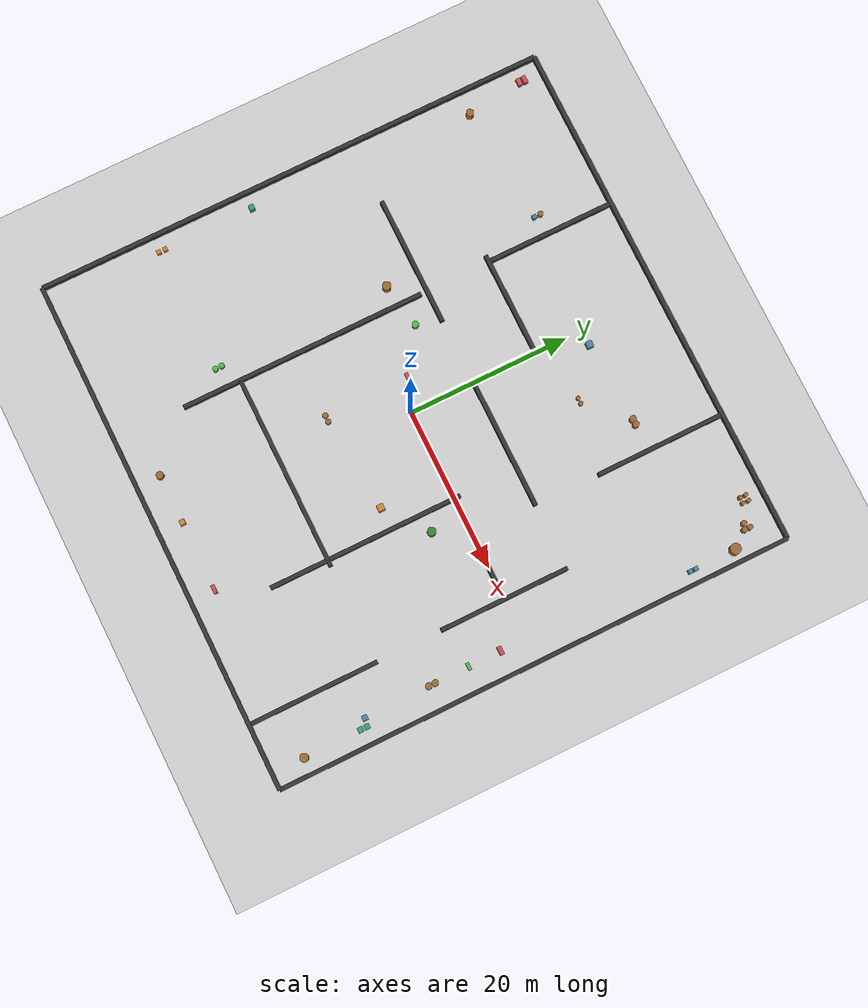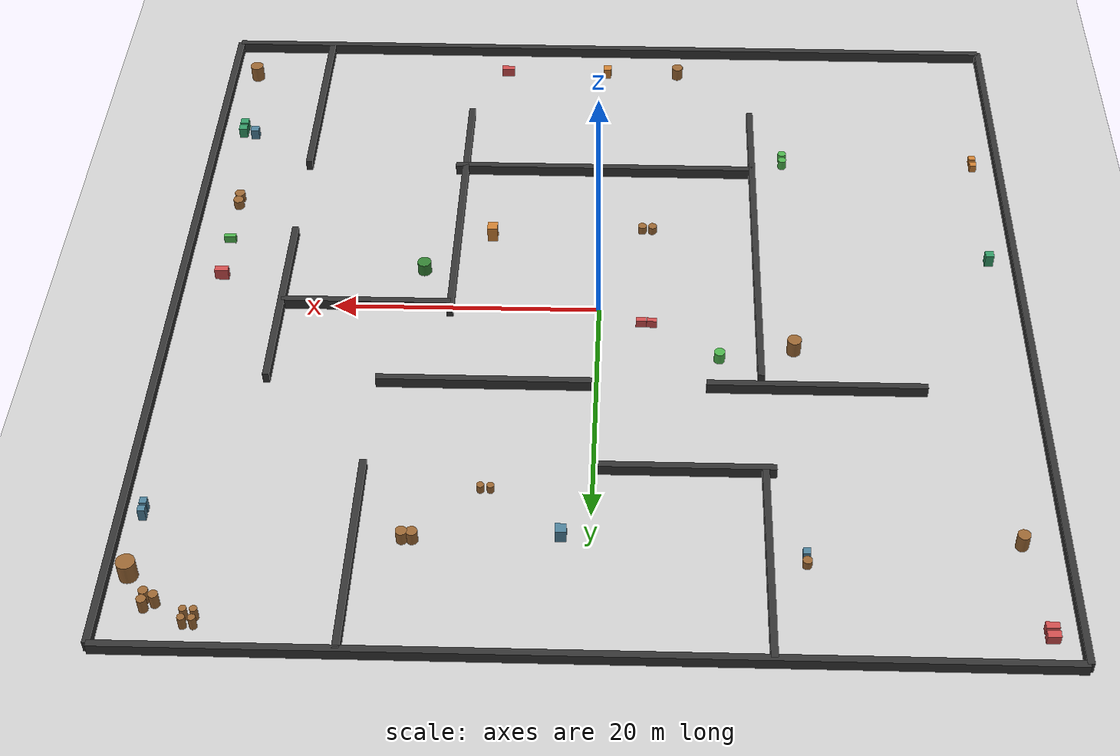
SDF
<sdf version="1.9">
 <world name="test_world">
  <model name="ground_plane">
   <static>true</static>
   <link name="link">
    <collision name="collision">
     <geometry><plane><normal>0 0 1</normal><size>64 64</size></plane></geometry>
    </collision>
    <visual name="visual">
     <geometry><plane><normal>0 0 1</normal><size>64 64</size></plane></geometry>
     <material>
      <ambient>0.8 0.8 0.8 1</ambient>
      <diffuse>0.8 0.8 0.8 1</diffuse>
      <specular>0.8 0.8 0.8 1</specular>
     </material>
    </visual>
    <inertial>
     <mass>1</mass>
     <inertia><ixx>1</ixx><ixy>0</ixy><ixz>0</ixz><iyy>1</iyy><iyz>0</iyz><izz>1</izz></inertia>
    </inertial>
   </link>
  </model>
  <model name="wall">
   <link name="length_right">
    <pose>0 -32 0 0 -0 0</pose>
    <inertial>
     <mass>1.14395</mass>
     <inertia><ixx>9.5329</ixx><ixy>0</ixy><ixz>0</ixz><iyy>0.0238</iyy><iyz>0</iyz><izz>9.5567</izz></inertia>
    </inertial>
    <collision name="box_collision"><geometry><box><size>64 0.5 1.6</size></box></geometry></collision>
    <visual name="box_visual">
     <geometry><box><size>64 0.5 1.6</size></box></geometry>
     <material>
      <ambient>0.2 0.2 0.2 1</ambient>
      <diffuse>0.2 0.2 0.2 1</diffuse>
      <specular>0.2 0.2 0.2 1</specular>
     </material>
    </visual>
   </link>
   <link name="length_left">
    <pose>0 32 0 0 -0 0</pose>
    <inertial>
     <mass>1.14395</mass>
     <inertia><ixx>9.5329</ixx><ixy>0</ixy><ixz>0</ixz><iyy>0.0238</iyy><iyz>0</iyz><izz>9.5567</izz></inertia>
    </inertial>
    <collision name="box_collision"><geometry><box><size>64 0.5 1.6</size></box></geometry></collision>
    <visual name="box_visual">
     <geometry><box><size>64 0.5 1.6</size></box></geometry>
     <material>
      <ambient>0.2 0.2 0.2 1</ambient>
      <diffuse>0.2 0.2 0.2 1</diffuse>
      <specular>0.2 0.2 0.2 1</specular>
     </material>
    </visual>
   </link>
   <link name="width_right">
    <pose>-32 0 0 0 -0 0</pose>
    <inertial>
     <inertia><ixx>0.16666</ixx><ixy>0</ixy><ixz>0</ixz><iyy>0.16666</iyy><iyz>0</iyz><izz>0.16666</izz></inertia>
     <mass>1000</mass>
    </inertial>
    <collision name="box_collision"><geometry><box><size>0.5 64 1.6</size></box></geometry></collision>
    <visual name="box_visual">
     <geometry><box><size>0.5 64 1.6</size></box></geometry>
     <material>
      <ambient>0.2 0.2 0.2 1</ambient>
      <diffuse>0.2 0.2 0.2 1</diffuse>
      <specular>0.2 0.2 0.2 1</specular>
     </material>
    </visual>
   </link>
   <link name="width_left">
    <pose>32 0 0 0 -0 0</pose>
    <inertial>
     <inertia><ixx>0.16666</ixx><ixy>0</ixy><ixz>0</ixz><iyy>0.16666</iyy><iyz>0</iyz><izz>0.16666</izz></inertia>
     <mass>1000</mass>
    </inertial>
    <collision name="box_collision"><geometry><box><size>0.5 64 1.6</size></box></geometry></collision>
    <visual name="box_visual">
     <geometry><box><size>0.5 64 1.6</size></box></geometry>
     <material>
      <ambient>0.2 0.2 0.2 1</ambient>
      <diffuse>0.2 0.2 0.2 1</diffuse>
      <specular>0.2 0.2 0.2 1</specular>
     </material>
    </visual>
   </link>
   <link name="top_from_right_to_middle_width">
    <pose>24 -24 0 0 0 0</pose>
    <inertial>
     <mass>1000</mass>
     <inertia><ixx>9.5329</ixx><ixy>0</ixy><ixz>0</ixz><iyy>0.0238</iyy><iyz>0</iyz><izz>9.5567</izz></inertia>
    </inertial>
    <collision name="box_collision"><geometry><box><size>0.5 16 1.6</size></box></geometry></collision>
    <visual name="box_visual">
     <geometry><box><size>0.5 16 1.6</size></box></geometry>
     <material>
      <ambient>0.2 0.2 0.2 1</ambient>
      <diffuse>0.2 0.2 0.2 1</diffuse>
      <specular>0.2 0.2 0.2 1</specular>
     </material>
    </visual>
   </link>
   <link name="top_middle_width">
    <pose>24 0 0 0 0 0</pose>
    <inertial>
     <mass>1000</mass>
     <inertia><ixx>9.5329</ixx><ixy>0</ixy><ixz>0</ixz><iyy>0.0238</iyy><iyz>0</iyz><izz>9.5567</izz></inertia>
    </inertial>
    <collision name="box_collision"><geometry><box><size>0.5 16 1.6</size></box></geometry></collision>
    <visual name="box_visual">
     <geometry><box><size>0.5 16 1.6</size></box></geometry>
     <material>
      <ambient>0.2 0.2 0.2 1</ambient>
      <diffuse>0.2 0.2 0.2 1</diffuse>
      <specular>0.2 0.2 0.2 1</specular>
     </material>
    </visual>
   </link>
   <link name="top_left_length">
    <pose>16 24 0 0 0 0</pose>
    <inertial>
     <mass>1000</mass>
     <inertia><ixx>9.5329</ixx><ixy>0</ixy><ixz>0</ixz><iyy>0.0238</iyy><iyz>0</iyz><izz>9.5567</izz></inertia>
    </inertial>
    <collision name="box_collision"><geometry><box><size>0.5 16 1.6</size></box></geometry></collision>
    <visual name="box_visual">
     <geometry><box><size>0.5 16 1.6</size></box></geometry>
     <material>
      <ambient>0.2 0.2 0.2 1</ambient>
      <diffuse>0.2 0.2 0.2 1</diffuse>
      <specular>0.2 0.2 0.2 1</specular>
     </material>
    </visual>
   </link>
   <link name="middle_length">
    <pose>17.6 0 0 0 0 0</pose>
    <inertial>
     <mass>1000</mass>
     <inertia><ixx>9.5329</ixx><ixy>0</ixy><ixz>0</ixz><iyy>0.0238</iyy><iyz>0</iyz><izz>9.5567</izz></inertia>
    </inertial>
    <collision name="box_collision"><geometry><box><size>12.8 0.5 1.6</size></box></geometry></collision>
    <visual name="box_visual">
     <geometry><box><size>12.8 0.5 1.6</size></box></geometry>
     <material>
      <ambient>0.2 0.2 0.2 1</ambient>
      <diffuse>0.2 0.2 0.2 1</diffuse>
      <specular>0.2 0.2 0.2 1</specular>
     </material>
    </visual>
   </link>
   <link name="middle_width">
    <pose>11.2 -11.2 0 0 0 0</pose>
    <inertial>
     <mass>1000</mass>
     <inertia><ixx>9.5329</ixx><ixy>0</ixy><ixz>0</ixz><iyy>0.0238</iyy><iyz>0</iyz><izz>9.5567</izz></inertia>
    </inertial>
    <collision name="box_collision"><geometry><box><size>0.5 24 1.6</size></box></geometry></collision>
    <visual name="box_visual">
     <geometry><box><size>0.5 24 1.6</size></box></geometry>
     <material>
      <ambient>0.2 0.2 0.2 1</ambient>
      <diffuse>0.2 0.2 0.2 1</diffuse>
      <specular>0.2 0.2 0.2 1</specular>
     </material>
    </visual>
   </link>
   <link name="middle_left_length">
    <pose>8 8 0 0 0 0</pose>
    <inertial>
     <mass>1000</mass>
     <inertia><ixx>9.5329</ixx><ixy>0</ixy><ixz>0</ixz><iyy>0.0238</iyy><iyz>0</iyz><izz>9.5567</izz></inertia>
    </inertial>
    <collision name="box_collision"><geometry><box><size>16 0.5 1.6</size></box></geometry></collision>
    <visual name="box_visual">
     <geometry><box><size>16 0.5 1.6</size></box></geometry>
     <material>
      <ambient>0.2 0.2 0.2 1</ambient>
      <diffuse>0.2 0.2 0.2 1</diffuse>
      <specular>0.2 0.2 0.2 1</specular>
     </material>
    </visual>
   </link>
   <link name="low_left_length">
    <pose>-16 8 0 0 0 0</pose>
    <inertial>
     <mass>1000</mass>
     <inertia><ixx>9.5329</ixx><ixy>0</ixy><ixz>0</ixz><iyy>0.0238</iyy><iyz>0</iyz><izz>9.5567</izz></inertia>
    </inertial>
    <collision name="box_collision"><geometry><box><size>16 0.5 1.6</size></box></geometry></collision>
    <visual name="box_visual">
     <geometry><box><size>16 0.5 1.6</size></box></geometry>
     <material>
      <ambient>0.2 0.2 0.2 1</ambient>
      <diffuse>0.2 0.2 0.2 1</diffuse>
      <specular>0.2 0.2 0.2 1</specular>
     </material>
    </visual>
   </link>
   <link name="left_blind_alley_left_wall">
    <pose>-6.4 16 0 0 0 0</pose>
    <inertial>
     <mass>1000</mass>
     <inertia><ixx>9.5329</ixx><ixy>0</ixy><ixz>0</ixz><iyy>0.0238</iyy><iyz>0</iyz><izz>9.5567</izz></inertia>
    </inertial>
    <collision name="box_collision"><geometry><box><size>12.8 0.5 1.6</size></box></geometry></collision>
    <visual name="box_visual">
     <geometry><box><size>12.8 0.5 1.6</size></box></geometry>
     <material>
      <ambient>0.2 0.2 0.2 1</ambient>
      <diffuse>0.2 0.2 0.2 1</diffuse>
      <specular>0.2 0.2 0.2 1</specular>
     </material>
    </visual>
   </link>
   <link name="left_blind_alley_bottom_wall">
    <pose>-12 24 0 0 0 0</pose>
    <inertial>
     <mass>1000</mass>
     <inertia><ixx>9.5329</ixx><ixy>0</ixy><ixz>0</ixz><iyy>0.0238</iyy><iyz>0</iyz><izz>9.5567</izz></inertia>
    </inertial>
    <collision name="box_collision"><geometry><box><size>0.5 16 1.6</size></box></geometry></collision>
    <visual name="box_visual">
     <geometry><box><size>0.5 16 1.6</size></box></geometry>
     <material>
      <ambient>0.2 0.2 0.2 1</ambient>
      <diffuse>0.2 0.2 0.2 1</diffuse>
      <specular>0.2 0.2 0.2 1</specular>
     </material>
    </visual>
   </link>
   <link name="left_bottom_width">
    <pose>-12 -8 0 0 0 0</pose>
    <inertial>
     <mass>1000</mass>
     <inertia><ixx>9.5329</ixx><ixy>0</ixy><ixz>0</ixz><iyy>0.0238</iyy><iyz>0</iyz><izz>9.5567</izz></inertia>
    </inertial>
    <collision name="box_collision"><geometry><box><size>0.5 30.4 1.6</size></box></geometry></collision>
    <visual name="box_visual">
     <geometry><box><size>0.5 30.4 1.6</size></box></geometry>
     <material>
      <ambient>0.2 0.2 0.2 1</ambient>
      <diffuse>0.2 0.2 0.2 1</diffuse>
      <specular>0.2 0.2 0.2 1</specular>
     </material>
    </visual>
   </link>
   <link name="right_middle_length">
    <pose>0 -16 0 0 0 0</pose>
    <inertial>
     <mass>1000</mass>
     <inertia><ixx>9.5329</ixx><ixy>0</ixy><ixz>0</ixz><iyy>0.0238</iyy><iyz>0</iyz><izz>9.5567</izz></inertia>
    </inertial>
    <collision name="box_collision"><geometry><box><size>24 0.5 1.6</size></box></geometry></collision>
    <visual name="box_visual">
     <geometry><box><size>24 0.5 1.6</size></box></geometry>
     <material>
      <ambient>0.2 0.2 0.2 1</ambient>
      <diffuse>0.2 0.2 0.2 1</diffuse>
      <specular>0.2 0.2 0.2 1</specular>
     </material>
    </visual>
   </link>
   <static>true</static>
  </model>
  <model name="feat_cylinder_g1_1">
   <static>true</static>
   <pose>30.5 26.0 0.78 0 0 0</pose>
   <link name="link">
    <collision name="c">
     <geometry><cylinder><radius>0.65</radius><length>1.56</length></cylinder></geometry>
    </collision>
    <visual name="v">
     <geometry><cylinder><radius>0.65</radius><length>1.56</length></cylinder></geometry>
     <material><ambient>0.6 0.4 0.2 1</ambient><diffuse>0.6 0.4 0.2 1</diffuse></material>
    </visual>
   </link>
  </model>
  <model name="feat_box_g2_1">
   <static>true</static>
   <pose>30.5 21.0 0.52 0 0 0</pose>
   <link name="link">
    <collision name="c"><geometry><box><size>0.52 0.52 1.04</size></box></geometry></collision>
    <visual name="v">
     <geometry><box><size>0.52 0.52 1.04</size></box></geometry>
     <material><ambient>0.3 0.5 0.6 1</ambient><diffuse>0.3 0.5 0.6 1</diffuse></material>
    </visual>
   </link>
  </model>
  <model name="feat_box_g2_2">
   <static>true</static>
   <pose>30.5 20.3 0.52 0 0 0</pose>
   <link name="link">
    <collision name="c"><geometry><box><size>0.52 0.52 1.04</size></box></geometry></collision>
    <visual name="v">
     <geometry><box><size>0.52 0.52 1.04</size></box></geometry>
     <material><ambient>0.3 0.5 0.6 1</ambient><diffuse>0.3 0.5 0.6 1</diffuse></material>
    </visual>
   </link>
  </model>
  <model name="feat_cylinder_g3_1">
   <static>true</static>
   <pose>29.0 28.0 0.58 0 0 0</pose>
   <link name="link">
    <collision name="c">
     <geometry><cylinder><radius>0.33</radius><length>1.17</length></cylinder></geometry>
    </collision>
    <visual name="v">
     <geometry><cylinder><radius>0.33</radius><length>1.17</length></cylinder></geometry>
     <material><ambient>0.6 0.4 0.2 1</ambient><diffuse>0.6 0.4 0.2 1</diffuse></material>
    </visual>
   </link>
  </model>
  <model name="feat_cylinder_g3_2">
   <static>true</static>
   <pose>29.0 28.7 0.58 0 0 0</pose>
   <link name="link">
    <collision name="c">
     <geometry><cylinder><radius>0.33</radius><length>1.17</length></cylinder></geometry>
    </collision>
    <visual name="v">
     <geometry><cylinder><radius>0.33</radius><length>1.17</length></cylinder></geometry>
     <material><ambient>0.6 0.4 0.2 1</ambient><diffuse>0.6 0.4 0.2 1</diffuse></material>
    </visual>
   </link>
  </model>
  <model name="feat_cylinder_g3_3">
   <static>true</static>
   <pose>28.3 28.3 0.58 0 0 0</pose>
   <link name="link">
    <collision name="c">
     <geometry><cylinder><radius>0.33</radius><length>1.17</length></cylinder></geometry>
    </collision>
    <visual name="v">
     <geometry><cylinder><radius>0.33</radius><length>1.17</length></cylinder></geometry>
     <material><ambient>0.6 0.4 0.2 1</ambient><diffuse>0.6 0.4 0.2 1</diffuse></material>
    </visual>
   </link>
  </model>
  <model name="feat_cylinder_g4_1">
   <static>true</static>
   <pose>25.5 30.0 0.52 0 0 0</pose>
   <link name="link">
    <collision name="c">
     <geometry><cylinder><radius>0.26</radius><length>1.04</length></cylinder></geometry>
    </collision>
    <visual name="v">
     <geometry><cylinder><radius>0.26</radius><length>1.04</length></cylinder></geometry>
     <material><ambient>0.6 0.4 0.2 1</ambient><diffuse>0.6 0.4 0.2 1</diffuse></material>
    </visual>
   </link>
  </model>
  <model name="feat_cylinder_g4_2">
   <static>true</static>
   <pose>26.2 30.0 0.52 0 0 0</pose>
   <link name="link">
    <collision name="c">
     <geometry><cylinder><radius>0.26</radius><length>1.04</length></cylinder></geometry>
    </collision>
    <visual name="v">
     <geometry><cylinder><radius>0.26</radius><length>1.04</length></cylinder></geometry>
     <material><ambient>0.6 0.4 0.2 1</ambient><diffuse>0.6 0.4 0.2 1</diffuse></material>
    </visual>
   </link>
  </model>
  <model name="feat_cylinder_g4_3">
   <static>true</static>
   <pose>26.2 29.3 0.52 0 0 0</pose>
   <link name="link">
    <collision name="c">
     <geometry><cylinder><radius>0.26</radius><length>1.04</length></cylinder></geometry>
    </collision>
    <visual name="v">
     <geometry><cylinder><radius>0.26</radius><length>1.04</length></cylinder></geometry>
     <material><ambient>0.6 0.4 0.2 1</ambient><diffuse>0.6 0.4 0.2 1</diffuse></material>
    </visual>
   </link>
  </model>
  <model name="feat_cylinder_g4_4">
   <static>true</static>
   <pose>25.5 29.3 0.52 0 0 0</pose>
   <link name="link">
    <collision name="c">
     <geometry><cylinder><radius>0.26</radius><length>1.04</length></cylinder></geometry>
    </collision>
    <visual name="v">
     <geometry><cylinder><radius>0.26</radius><length>1.04</length></cylinder></geometry>
     <material><ambient>0.6 0.4 0.2 1</ambient><diffuse>0.6 0.4 0.2 1</diffuse></material>
    </visual>
   </link>
  </model>
  <model name="feat_cylinder_g5_1">
   <static>true</static>
   <pose>-29.0 22.0 0.65 0 0 0</pose>
   <link name="link">
    <collision name="c">
     <geometry><cylinder><radius>0.45</radius><length>1.3</length></cylinder></geometry>
    </collision>
    <visual name="v">
     <geometry><cylinder><radius>0.45</radius><length>1.3</length></cylinder></geometry>
     <material><ambient>0.6 0.4 0.2 1</ambient><diffuse>0.6 0.4 0.2 1</diffuse></material>
    </visual>
   </link>
  </model>
  <model name="feat_cylinder_g6_1">
   <static>true</static>
   <pose>-14.5 24.0 0.33 0 0 0</pose>
   <link name="link">
    <collision name="c">
     <geometry><cylinder><radius>0.33</radius><length>0.65</length></cylinder></geometry>
    </collision>
    <visual name="v">
     <geometry><cylinder><radius>0.33</radius><length>0.65</length></cylinder></geometry>
     <material><ambient>0.6 0.4 0.2 1</ambient><diffuse>0.6 0.4 0.2 1</diffuse></material>
    </visual>
   </link>
  </model>
  <model name="feat_box_g6_2">
   <static>true</static>
   <pose>-14.5 23.2 0.33 0 0 0</pose>
   <link name="link">
    <collision name="c"><geometry><box><size>0.52 0.52 0.65</size></box></geometry></collision>
    <visual name="v">
     <geometry><box><size>0.52 0.52 0.65</size></box></geometry>
     <material><ambient>0.3 0.5 0.6 1</ambient><diffuse>0.3 0.5 0.6 1</diffuse></material>
    </visual>
   </link>
  </model>
  <model name="feat_cuboid_g7_1">
   <static>true</static>
   <pose>-30.0 29.0 0.39 0 0 0</pose>
   <link name="link">
    <collision name="c"><geometry><box><size>0.91 0.52 0.78</size></box></geometry></collision>
    <visual name="v">
     <geometry><box><size>0.91 0.52 0.78</size></box></geometry>
     <material><ambient>0.8 0.3 0.3 1</ambient><diffuse>0.8 0.3 0.3 1</diffuse></material>
    </visual>
   </link>
  </model>
  <model name="feat_cuboid_g7_2">
   <static>true</static>
   <pose>-30.0 29.7 0.39 0 0 0</pose>
   <link name="link">
    <collision name="c"><geometry><box><size>0.91 0.52 0.78</size></box></geometry></collision>
    <visual name="v">
     <geometry><box><size>0.91 0.52 0.78</size></box></geometry>
     <material><ambient>0.8 0.3 0.3 1</ambient><diffuse>0.8 0.3 0.3 1</diffuse></material>
    </visual>
   </link>
  </model>
  <model name="feat_box_g8_1">
   <static>true</static>
   <pose>2.0 22.0 0.52 0 0 0</pose>
   <link name="link">
    <collision name="c"><geometry><box><size>0.78 0.78 1.04</size></box></geometry></collision>
    <visual name="v">
     <geometry><box><size>0.78 0.78 1.04</size></box></geometry>
     <material><ambient>0.3 0.5 0.6 1</ambient><diffuse>0.3 0.5 0.6 1</diffuse></material>
    </visual>
   </link>
  </model>
  <model name="feat_cylinder_g9_1">
   <static>true</static>
   <pose>12.0 22.5 0.52 0 0 0</pose>
   <link name="link">
    <collision name="c">
     <geometry><cylinder><radius>0.4</radius><length>1.04</length></cylinder></geometry>
    </collision>
    <visual name="v">
     <geometry><cylinder><radius>0.4</radius><length>1.04</length></cylinder></geometry>
     <material><ambient>0.6 0.4 0.2 1</ambient><diffuse>0.6 0.4 0.2 1</diffuse></material>
    </visual>
   </link>
  </model>
  <model name="feat_cylinder_g9_2">
   <static>true</static>
   <pose>12.7 22.5 0.52 0 0 0</pose>
   <link name="link">
    <collision name="c">
     <geometry><cylinder><radius>0.4</radius><length>1.04</length></cylinder></geometry>
    </collision>
    <visual name="v">
     <geometry><cylinder><radius>0.4</radius><length>1.04</length></cylinder></geometry>
     <material><ambient>0.6 0.4 0.2 1</ambient><diffuse>0.6 0.4 0.2 1</diffuse></material>
    </visual>
   </link>
  </model>
  <model name="feat_cylinder_g10_1">
   <static>true</static>
   <pose>7.0 18.0 0.33 0 0 0</pose>
   <link name="link">
    <collision name="c">
     <geometry><cylinder><radius>0.26</radius><length>0.65</length></cylinder></geometry>
    </collision>
    <visual name="v">
     <geometry><cylinder><radius>0.26</radius><length>0.65</length></cylinder></geometry>
     <material><ambient>0.6 0.4 0.2 1</ambient><diffuse>0.6 0.4 0.2 1</diffuse></material>
    </visual>
   </link>
  </model>
  <model name="feat_cylinder_g10_2">
   <static>true</static>
   <pose>7.7 18.0 0.33 0 0 0</pose>
   <link name="link">
    <collision name="c">
     <geometry><cylinder><radius>0.26</radius><length>0.65</length></cylinder></geometry>
    </collision>
    <visual name="v">
     <geometry><cylinder><radius>0.26</radius><length>0.65</length></cylinder></geometry>
     <material><ambient>0.6 0.4 0.2 1</ambient><diffuse>0.6 0.4 0.2 1</diffuse></material>
    </visual>
   </link>
  </model>
  <model name="feat_cuboid_g11_1">
   <static>true</static>
   <pose>29.0 -3.0 0.45 0 0 0</pose>
   <link name="link">
    <collision name="c"><geometry><box><size>1.04 0.52 0.91</size></box></geometry></collision>
    <visual name="v">
     <geometry><box><size>1.04 0.52 0.91</size></box></geometry>
     <material><ambient>0.8 0.3 0.3 1</ambient><diffuse>0.8 0.3 0.3 1</diffuse></material>
    </visual>
   </link>
  </model>
  <model name="feat_cylinder_g12_1">
   <static>true</static>
   <pose>29.0 -12.0 0.39 0 0 0</pose>
   <link name="link">
    <collision name="c">
     <geometry><cylinder><radius>0.4</radius><length>0.78</length></cylinder></geometry>
    </collision>
    <visual name="v">
     <geometry><cylinder><radius>0.4</radius><length>0.78</length></cylinder></geometry>
     <material><ambient>0.6 0.4 0.2 1</ambient><diffuse>0.6 0.4 0.2 1</diffuse></material>
    </visual>
   </link>
  </model>
  <model name="feat_cylinder_g12_2">
   <static>true</static>
   <pose>29.0 -11.2 0.39 0 0 0</pose>
   <link name="link">
    <collision name="c">
     <geometry><cylinder><radius>0.4</radius><length>0.78</length></cylinder></geometry>
    </collision>
    <visual name="v">
     <geometry><cylinder><radius>0.4</radius><length>0.78</length></cylinder></geometry>
     <material><ambient>0.6 0.4 0.2 1</ambient><diffuse>0.6 0.4 0.2 1</diffuse></material>
    </visual>
   </link>
  </model>
  <model name="feat_box_g13_1">
   <static>true</static>
   <pose>29.0 -20.0 0.45 0 0 0</pose>
   <link name="link">
    <collision name="c"><geometry><box><size>0.65 0.65 0.91</size></box></geometry></collision>
    <visual name="v">
     <geometry><box><size>0.65 0.65 0.91</size></box></geometry>
     <material><ambient>0.3 0.5 0.6 1</ambient><diffuse>0.3 0.5 0.6 1</diffuse></material>
    </visual>
   </link>
  </model>
  <model name="feat_cuboid_g14_1">
   <static>true</static>
   <pose>29.0 -7.0 0.39 0 0 0</pose>
   <link name="link">
    <collision name="c"><geometry><box><size>0.91 0.4 0.65</size></box></geometry></collision>
    <visual name="v">
     <geometry><box><size>0.91 0.4 0.65</size></box></geometry>
     <material><ambient>0.3 0.7 0.3 1</ambient><diffuse>0.3 0.7 0.3 1</diffuse></material>
    </visual>
   </link>
  </model>
  <model name="feat_cylinder_g15_1">
   <static>true</static>
   <pose>13.5 -4.0 0.52 0 0 0</pose>
   <link name="link">
    <collision name="c">
     <geometry><cylinder><radius>0.52</radius><length>1.04</length></cylinder></geometry>
    </collision>
    <visual name="v">
     <geometry><cylinder><radius>0.52</radius><length>1.04</length></cylinder></geometry>
     <material><ambient>0.2 0.5 0.2 1</ambient><diffuse>0.2 0.5 0.2 1</diffuse></material>
    </visual>
   </link>
  </model>
  <model name="feat_box_g16_1">
   <static>true</static>
   <pose>8.5 -8.0 0.65 0 0 0</pose>
   <link name="link">
    <collision name="c"><geometry><box><size>0.78 0.78 1.3</size></box></geometry></collision>
    <visual name="v">
     <geometry><box><size>0.78 0.78 1.3</size></box></geometry>
     <material><ambient>0.8 0.5 0.2 1</ambient><diffuse>0.8 0.5 0.2 1</diffuse></material>
    </visual>
   </link>
  </model>
  <model name="feat_cylinder_g17_1">
   <static>true</static>
   <pose>-4.0 -9.0 0.33 0 0 0</pose>
   <link name="link">
    <collision name="c">
     <geometry><cylinder><radius>0.33</radius><length>0.65</length></cylinder></geometry>
    </collision>
    <visual name="v">
     <geometry><cylinder><radius>0.33</radius><length>0.65</length></cylinder></geometry>
     <material><ambient>0.6 0.4 0.2 1</ambient><diffuse>0.6 0.4 0.2 1</diffuse></material>
    </visual>
   </link>
  </model>
  <model name="feat_cylinder_g17_2">
   <static>true</static>
   <pose>-3.2 -9.0 0.33 0 0 0</pose>
   <link name="link">
    <collision name="c">
     <geometry><cylinder><radius>0.33</radius><length>0.65</length></cylinder></geometry>
    </collision>
    <visual name="v">
     <geometry><cylinder><radius>0.33</radius><length>0.65</length></cylinder></geometry>
     <material><ambient>0.6 0.4 0.2 1</ambient><diffuse>0.6 0.4 0.2 1</diffuse></material>
    </visual>
   </link>
  </model>
  <model name="feat_cylinder_g18_1">
   <static>true</static>
   <pose>-9.0 5.0 0.45 0 0 0</pose>
   <link name="link">
    <collision name="c">
     <geometry><cylinder><radius>0.4</radius><length>0.91</length></cylinder></geometry>
    </collision>
    <visual name="v">
     <geometry><cylinder><radius>0.4</radius><length>0.91</length></cylinder></geometry>
     <material><ambient>0.3 0.7 0.3 1</ambient><diffuse>0.3 0.7 0.3 1</diffuse></material>
    </visual>
   </link>
  </model>
  <model name="feat_cuboid_g19_1">
   <static>true</static>
   <pose>-4.0 1.5 0.33 0 0 0</pose>
   <link name="link">
    <collision name="c"><geometry><box><size>0.78 0.4 0.65</size></box></geometry></collision>
    <visual name="v">
     <geometry><box><size>0.78 0.4 0.65</size></box></geometry>
     <material><ambient>0.8 0.3 0.3 1</ambient><diffuse>0.8 0.3 0.3 1</diffuse></material>
    </visual>
   </link>
  </model>
  <model name="feat_cuboid_g19_2">
   <static>true</static>
   <pose>-3.2 1.5 0.33 0 0 0</pose>
   <link name="link">
    <collision name="c"><geometry><box><size>0.78 0.4 0.65</size></box></geometry></collision>
    <visual name="v">
     <geometry><box><size>0.78 0.4 0.65</size></box></geometry>
     <material><ambient>0.8 0.3 0.3 1</ambient><diffuse>0.8 0.3 0.3 1</diffuse></material>
    </visual>
   </link>
  </model>
  <model name="feat_box_g20_1">
   <static>true</static>
   <pose>-30.0 -6.0 0.52 0 0 0</pose>
   <link name="link">
    <collision name="c"><geometry><box><size>0.65 0.65 1.04</size></box></geometry></collision>
    <visual name="v">
     <geometry><box><size>0.65 0.65 1.04</size></box></geometry>
     <material><ambient>0.2 0.6 0.4 1</ambient><diffuse>0.2 0.6 0.4 1</diffuse></material>
    </visual>
   </link>
  </model>
  <model name="feat_cylinder_g21_1">
   <static>true</static>
   <pose>-14.5 4.0 0.65 0 0 0</pose>
   <link name="link">
    <collision name="c">
     <geometry><cylinder><radius>0.52</radius><length>1.3</length></cylinder></geometry>
    </collision>
    <visual name="v">
     <geometry><cylinder><radius>0.52</radius><length>1.3</length></cylinder></geometry>
     <material><ambient>0.6 0.4 0.2 1</ambient><diffuse>0.6 0.4 0.2 1</diffuse></material>
    </visual>
   </link>
  </model>
  <model name="feat_box_g22_1">
   <static>true</static>
   <pose>-30.0 -18.0 0.33 0 0 0</pose>
   <link name="link">
    <collision name="c"><geometry><box><size>0.52 0.52 0.65</size></box></geometry></collision>
    <visual name="v">
     <geometry><box><size>0.52 0.52 0.65</size></box></geometry>
     <material><ambient>0.8 0.5 0.2 1</ambient><diffuse>0.8 0.5 0.2 1</diffuse></material>
    </visual>
   </link>
  </model>
  <model name="feat_box_g22_2">
   <static>true</static>
   <pose>-30.0 -17.2 0.33 0 0 0</pose>
   <link name="link">
    <collision name="c"><geometry><box><size>0.52 0.52 0.65</size></box></geometry></collision>
    <visual name="v">
     <geometry><box><size>0.52 0.52 0.65</size></box></geometry>
     <material><ambient>0.8 0.5 0.2 1</ambient><diffuse>0.8 0.5 0.2 1</diffuse></material>
    </visual>
   </link>
  </model>
  <model name="feat_cylinder_g23_1">
   <static>true</static>
   <pose>-14.5 -18.0 0.39 0 0 0</pose>
   <link name="link">
    <collision name="c">
     <geometry><cylinder><radius>0.33</radius><length>0.78</length></cylinder></geometry>
    </collision>
    <visual name="v">
     <geometry><cylinder><radius>0.33</radius><length>0.78</length></cylinder></geometry>
     <material><ambient>0.3 0.7 0.3 1</ambient><diffuse>0.3 0.7 0.3 1</diffuse></material>
    </visual>
   </link>
  </model>
  <model name="feat_cylinder_g23_2">
   <static>true</static>
   <pose>-14.5 -17.2 0.39 0 0 0</pose>
   <link name="link">
    <collision name="c">
     <geometry><cylinder><radius>0.33</radius><length>0.78</length></cylinder></geometry>
    </collision>
    <visual name="v">
     <geometry><cylinder><radius>0.33</radius><length>0.78</length></cylinder></geometry>
     <material><ambient>0.3 0.7 0.3 1</ambient><diffuse>0.3 0.7 0.3 1</diffuse></material>
    </visual>
   </link>
  </model>
  <model name="feat_cuboid_g24_1">
   <static>true</static>
   <pose>8.5 -29.0 0.39 0 0 0</pose>
   <link name="link">
    <collision name="c"><geometry><box><size>1.04 0.45 0.78</size></box></geometry></collision>
    <visual name="v">
     <geometry><box><size>1.04 0.45 0.78</size></box></geometry>
     <material><ambient>0.8 0.3 0.3 1</ambient><diffuse>0.8 0.3 0.3 1</diffuse></material>
    </visual>
   </link>
  </model>
  <model name="feat_cylinder_g25_1">
   <static>true</static>
   <pose>-6.0 -29.0 0.52 0 0 0</pose>
   <link name="link">
    <collision name="c">
     <geometry><cylinder><radius>0.45</radius><length>1.04</length></cylinder></geometry>
    </collision>
    <visual name="v">
     <geometry><cylinder><radius>0.45</radius><length>1.04</length></cylinder></geometry>
     <material><ambient>0.6 0.4 0.2 1</ambient><diffuse>0.6 0.4 0.2 1</diffuse></material>
    </visual>
   </link>
  </model>
  <model name="feat_box_g27_1">
   <static>true</static>
   <pose>0.0 -29.0 0.45 0 0 0</pose>
   <link name="link">
    <collision name="c"><geometry><box><size>0.65 0.65 0.91</size></box></geometry></collision>
    <visual name="v">
     <geometry><box><size>0.65 0.65 0.91</size></box></geometry>
     <material><ambient>0.8 0.5 0.2 1</ambient><diffuse>0.8 0.5 0.2 1</diffuse></material>
    </visual>
   </link>
  </model>
  <model name="feat_cylinder_g28_1">
   <static>true</static>
   <pose>30.0 -28.0 0.65 0 0 0</pose>
   <link name="link">
    <collision name="c">
     <geometry><cylinder><radius>0.52</radius><length>1.3</length></cylinder></geometry>
    </collision>
    <visual name="v">
     <geometry><cylinder><radius>0.52</radius><length>1.3</length></cylinder></geometry>
     <material><ambient>0.6 0.4 0.2 1</ambient><diffuse>0.6 0.4 0.2 1</diffuse></material>
    </visual>
   </link>
  </model>
  <model name="feat_box_g29_1">
   <static>true</static>
   <pose>30.0 -21.0 0.45 0 0 0</pose>
   <link name="link">
    <collision name="c"><geometry><box><size>0.65 0.65 0.91</size></box></geometry></collision>
    <visual name="v">
     <geometry><box><size>0.65 0.65 0.91</size></box></geometry>
     <material><ambient>0.2 0.6 0.4 1</ambient><diffuse>0.2 0.6 0.4 1</diffuse></material>
    </visual>
   </link>
  </model>
  <model name="feat_box_g29_2">
   <static>true</static>
   <pose>30.0 -20.2 0.45 0 0 0</pose>
   <link name="link">
    <collision name="c"><geometry><box><size>0.65 0.65 0.91</size></box></geometry></collision>
    <visual name="v">
     <geometry><box><size>0.65 0.65 0.91</size></box></geometry>
     <material><ambient>0.2 0.6 0.4 1</ambient><diffuse>0.2 0.6 0.4 1</diffuse></material>
    </visual>
   </link>
  </model>
 </world>
</sdf>
